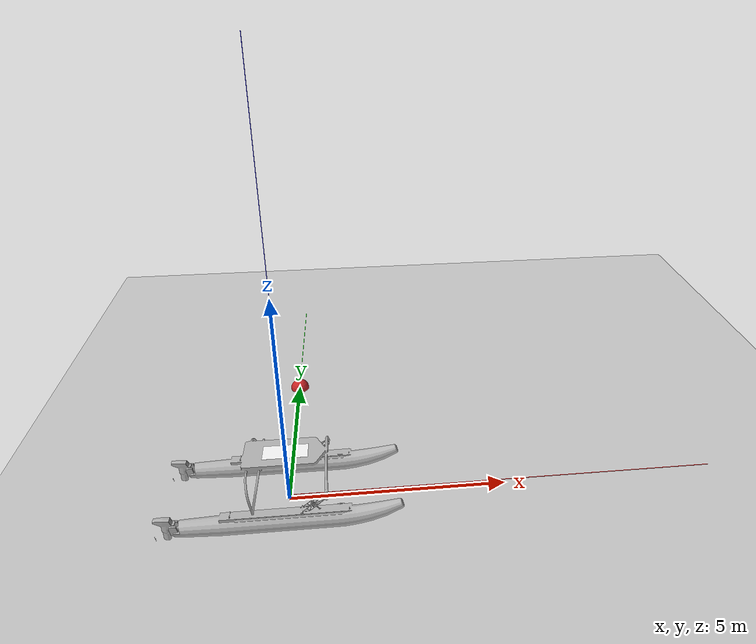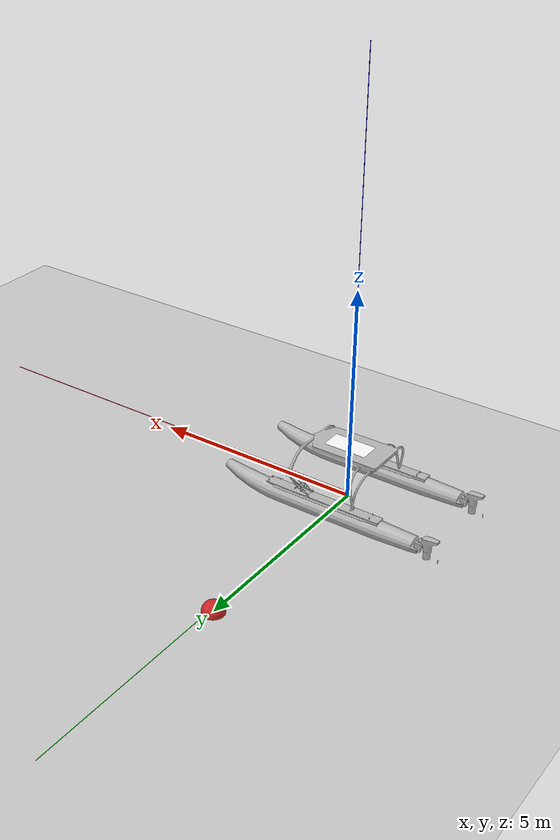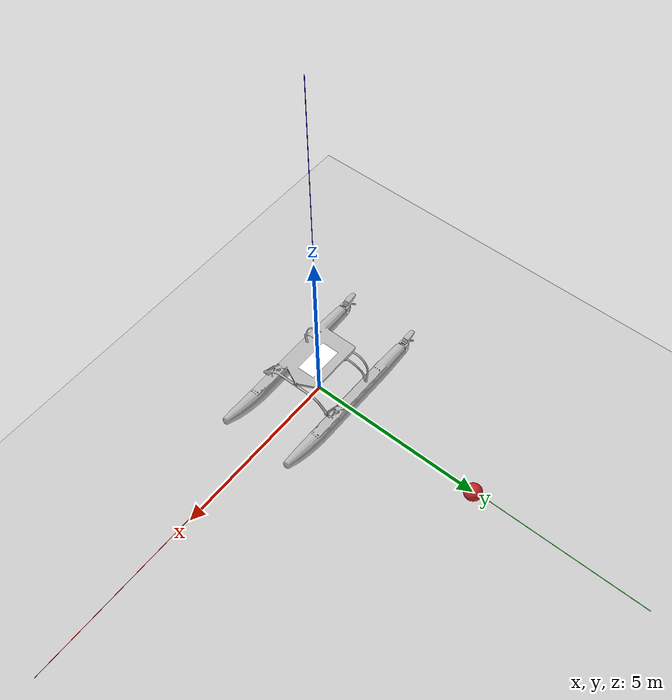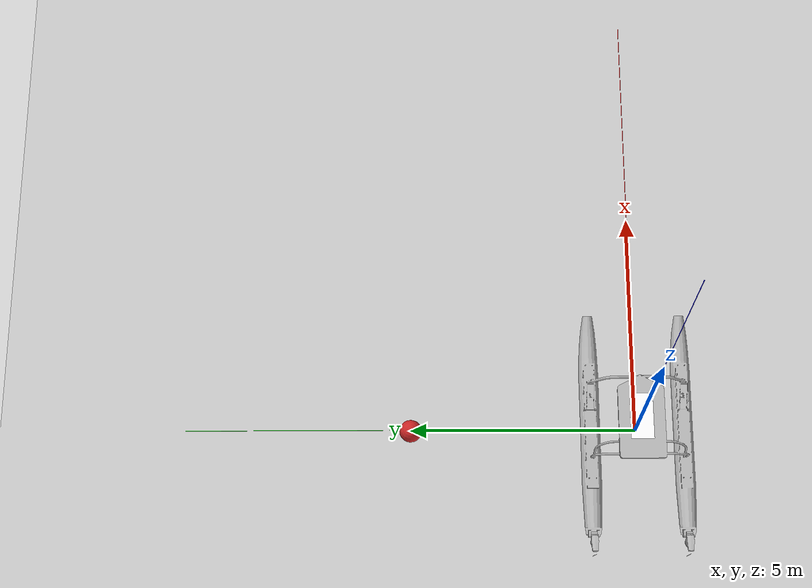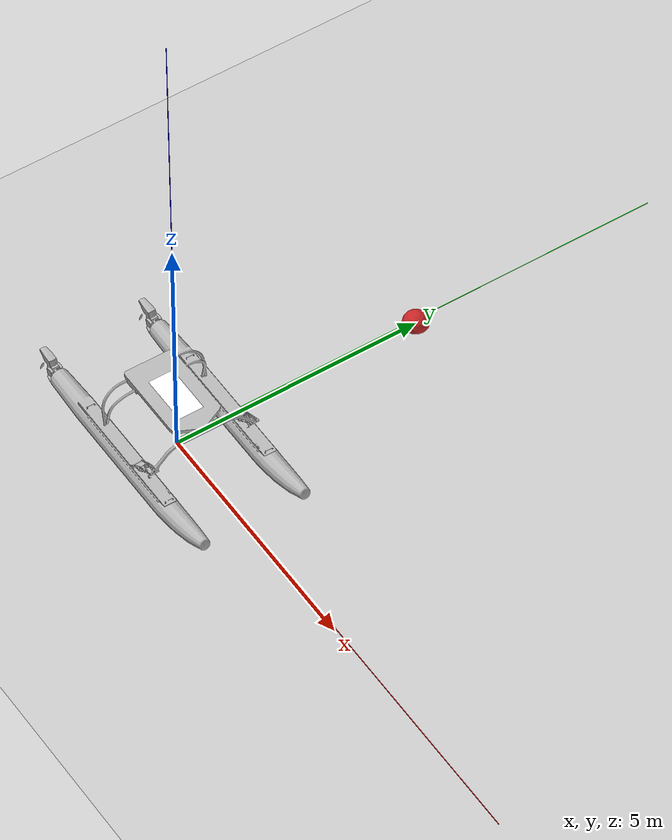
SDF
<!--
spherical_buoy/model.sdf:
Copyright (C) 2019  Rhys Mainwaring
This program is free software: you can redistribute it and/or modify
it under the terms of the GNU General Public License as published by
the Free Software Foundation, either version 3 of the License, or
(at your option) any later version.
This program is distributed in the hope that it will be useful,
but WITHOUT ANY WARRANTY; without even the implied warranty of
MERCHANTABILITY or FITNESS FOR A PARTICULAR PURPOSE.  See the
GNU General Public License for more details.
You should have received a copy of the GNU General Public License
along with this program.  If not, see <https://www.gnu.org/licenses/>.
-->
<sdf version="1.9">
 <world name="waves">
  <real_time_factor>0</real_time_factor>
  <gravity>0 0 -9.8</gravity>
  <magnetic_field>6e-06 2.3e-05 -4.2e-05</magnetic_field>
  <atmosphere type="adiabatic"/>
  <scene>
   <grid>false</grid>
   <ambient>0.4 0.4 0.4 1</ambient>
   <background>0.7 0.7 0.7 1</background>
   <shadows>true</shadows>
  </scene>
  <light type="directional" name="sun">
   <pose>0 0 10 0 0 0</pose>
   <diffuse>0.8 0.8 0.8 1</diffuse>
   <specular>0.6 0.6 0.6 1</specular>
   <direction>-0.5 0.1 -0.9</direction>
  </light>
  <wind><linear_velocity>7.07 7.07 0</linear_velocity></wind>
  <include><uri>model://waves</uri></include>
  <model name="axes">
   <static>1</static>
   <link name="link">
    <visual name="r">
     <cast_shadows>0</cast_shadows>
     <pose>5 0 0.1 0 0 0</pose>
     <geometry><box><size>10 0.01 0.01</size></box></geometry>
     <material>
      <ambient>1 0 0 1</ambient>
      <diffuse>1 0 0 1</diffuse>
      <emissive>1 0 0 1</emissive>
      <specular>0.5 0.5 0.5 1</specular>
     </material>
    </visual>
    <visual name="g">
     <cast_shadows>0</cast_shadows>
     <pose>0 5 0.1 0 0 0</pose>
     <geometry><box><size>0.01 10 0.01</size></box></geometry>
     <material>
      <ambient>0 1 0 1</ambient>
      <diffuse>0 1 0 1</diffuse>
      <emissive>0 1 0 1</emissive>
      <specular>0.5 0.5 0.5 1</specular>
     </material>
    </visual>
    <visual name="b">
     <cast_shadows>0</cast_shadows>
     <pose>0 0 5.1 0 0 0</pose>
     <geometry><box><size>0.01 0.01 10</size></box></geometry>
     <material>
      <ambient>0 0 1 1</ambient>
      <diffuse>0 0 1 1</diffuse>
      <emissive>0 0 1 1</emissive>
      <specular>0.5 0.5 0.5 1</specular>
     </material>
    </visual>
   </link>
  </model>
  <model name="ground_plane">
   <static>true</static>
   <link name="link">
    <collision name="collision">
     <geometry><plane><normal>0 0 1</normal><size>1 1</size></plane></geometry>
    </collision>
    <visual name="visual">
     <geometry><plane><normal>0 0 1</normal><size>500 500</size></plane></geometry>
     <material>
      <ambient>0.8 0.8 0.8 1</ambient>
      <diffuse>0.8 0.8 0.8 1</diffuse>
      <specular>0.8 0.8 0.8 1</specular>
     </material>
    </visual>
    <pose>0 0 -10 0 -0 0</pose>
    <inertial>
     <pose>0 0 -10 0 -0 0</pose>
     <mass>1</mass>
     <inertia><ixx>1</ixx><ixy>0</ixy><ixz>0</ixz><iyy>1</iyy><iyz>0</iyz><izz>1</izz></inertia>
    </inertial>
   </link>
  </model>
  <spherical_coordinates>
   <surface_model>EARTH_WGS84</surface_model>
   <world_frame_orientation>ENU</world_frame_orientation>
   <latitude_deg>47.397971057728974</latitude_deg>
   <longitude_deg>8.546163739800146</longitude_deg>
   <elevation>0</elevation>
  </spherical_coordinates>
  <include><pose>0 5 0 0 0 0</pose><uri>model://spherical_buoy</uri></include>
  <include><uri>model://wam-v</uri></include>
 </world>
</sdf>

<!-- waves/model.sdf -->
<sdf version="1.6">
  <model name="waves">
    <static>true</static>

    <plugin
        filename="gz-waves1-waves-model-system"
        name="gz::sim::systems::WavesModel">
      <static>0</static>
      <update_rate>30</update_rate>
      <wave>
        <!-- `fft` wave parameters -->
        <algorithm>fft</algorithm>
        <tile_size>256</tile_size>
        <cell_count>256</cell_count>
        <wind_speed>5.0</wind_speed>
        <wind_angle_deg>135</wind_angle_deg>
        <steepness>2</steepness>
      </wave>
    </plugin>

    <link name="base_link">

    </link>
  </model>
</sdf>

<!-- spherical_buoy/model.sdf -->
<sdf version="1.6">
  <model name="spherical_buoy">
    <static>false</static>

    <plugin name="hydrodynamics" filename="libHydrodynamicsPlugin.so">
      <!-- Wave Model -->
      <wave_model>ocean_waves</wave_model>

      <!-- Hydrodynamics -->
      <damping_on>true</damping_on>
      <viscous_drag_on>true</viscous_drag_on>
      <pressure_drag_on>true</pressure_drag_on>

      <!-- Markers -->
      <markers>
        <update_rate>30</update_rate>
        <water_patch>false</water_patch>
        <waterline>false</waterline>
        <underwater_surface>false</underwater_surface>
      </markers>
    </plugin>

    <link name="base_link">
      <visual name="base_visual">
        <geometry>
          <sphere>
            <radius>0.25</radius>
          </sphere>
        </geometry>
        <material>
          <script>
            <name>Gazebo/Red</name>
          </script>
        </material>
      </visual>

      <collision name="base_collision">
        <geometry>
          <sphere>
            <radius>0.25</radius>
          </sphere>
        </geometry>
      </collision>

      <!-- Mass and inertial assume volume is 0.1 densitity of water -->
      <inertial>
        <mass>6.545</mass>
        <inertia>
          <ixx>0.1636</ixx>
          <ixy>0.0</ixy>
          <ixz>0.0</ixz>
          <iyy>0.1636</iyy>
          <iyz>0.0</iyz>
          <izz>0.1636</izz>
        </inertia>
      </inertial>

    </link>

    <!-- Chain -->

  </model>
</sdf>

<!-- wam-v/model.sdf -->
<sdf version='1.7'>
  <model name='wamv'>
    <enable_wind>true</enable_wind>

    <link name="base_link">
      <visual name="visual">
        <geometry>
          <mesh>
            <uri>model://wam-v/meshes/WAM-V-Base.dae</uri>
          </mesh>
        </geometry>
      </visual>
      <collision name="collision">
        <geometry>
          <mesh>
            <uri>model://wam-v/meshes/wam-v-base_collision_406.stl</uri>
          </mesh>
        </geometry>
      </collision>
      <inertial>
        <pose>0 0 0 0 0 0</pose>
        <mass>180</mass>
        <inertia>
          <ixx>120</ixx>
          <ixy>0</ixy>
          <iyy>393</iyy>
          <iyz>0</iyz>
          <izz>446</izz>
        </inertia>
      </inertial>
    </link>

    <link name="left_engine_link">
      <pose>-2.373776 1.027135 0.318237 0 0 0</pose>
      <visual name="visual">
        <geometry>
          <mesh>
            <uri>model://wam-v/meshes/engine.dae</uri>
          </mesh>
        </geometry>
      </visual>
      <collision name="engine_vertical_axis_collision">
        <pose>-0.16 0 -0.215 0 0 0</pose>
        <geometry>
          <box>
            <size>0.2 0.1 0.83</size>
          </box>
        </geometry>
      </collision>
      <collision name="engine_rear_end_collision">
        <pose>-0.34 0 0.12 0 0 0</pose>
        <geometry>
          <box>
            <size>0.12 0.15 0.12</size>
          </box>
        </geometry>
      </collision>
      <inertial>
        <mass>15</mass>
        <inertia>
          <ixx>0.88924</ixx>
          <ixy>0</ixy>
          <iyy>0.911125</iyy>
          <iyz>0</iyz>
          <izz>0.078125</izz>
        </inertia>
      </inertial>
    </link>
    <joint name="left_engine_joint" type="revolute">
      <parent>base_link</parent>
      <child>left_engine_link</child>
      <axis>
        <xyz>0 0 1</xyz>
        <limit>
          <lower>-1.570796</lower>
          <upper>1.570796</upper>
        </limit>
        <dynamics>
          <damping>0.05</damping>
        </dynamics>
      </axis>
    </joint>
    <link name="right_engine_link">
      <pose>-2.373776 -1.027135 0.318237 0 0 0</pose>
      <visual name="visual">
        <geometry>
          <mesh>
            <uri>model://wam-v/meshes/engine.dae</uri>
          </mesh>
        </geometry>
      </visual>
      <collision name="engine_vertical_axis_collision">
        <pose>-0.16 0 -0.215 0 0 0</pose>
        <geometry>
          <box>
            <size>0.2 0.1 0.83</size>
          </box>
        </geometry>
      </collision>
      <collision name="engine_rear_end_collision">
        <pose>-0.34 0 0.12 0 0 0</pose>
        <geometry>
          <box>
            <size>0.12 0.15 0.12</size>
          </box>
        </geometry>
      </collision>
      <inertial>
        <mass>15</mass>
        <inertia>
          <ixx>0.88924</ixx>
          <ixy>0</ixy>
          <iyy>0.911125</iyy>
          <iyz>0</iyz>
          <izz>0.078125</izz>
        </inertia>
      </inertial>
    </link>
    <joint name="right_engine_joint" type="revolute">
      <parent>base_link</parent>
      <child>right_engine_link</child>
      <axis>
        <xyz>0 0 1</xyz>
        <limit>
          <lower>-1.570796</lower>
          <upper>1.570796</upper>
        </limit>
        <dynamics>
          <damping>0.05</damping>
        </dynamics>
      </axis>
    </joint>

    <link name="left_propeller_link">
      <pose relative_to="left_propeller_joint">0 0 0 0 0 0</pose>
      <visual name="visual">
        <geometry>
          <mesh>
            <uri>model://wam-v/meshes/propeller.dae</uri>
          </mesh>
        </geometry>
      </visual>
      <collision name="collision">
        <pose>-0.11 0 0 0 1.570796 0</pose>
        <geometry>
          <cylinder>
            <length>0.08</length>
            <radius>0.24</radius>
          </cylinder>
        </geometry>
      </collision>
      <inertial>
        <mass>0.5</mass>
        <inertia>
          <ixx>0.008545</ixx>
          <ixy>0</ixy>
          <iyy>0.008545</iyy>
          <iyz>0</iyz>
          <izz>0.0144</izz>
        </inertia>
      </inertial>
    </link>
    <joint name="left_propeller_joint" type="revolute">
      <pose relative_to="left_engine_link">-0.278156 0 -0.509371 0 0 0</pose>
      <parent>left_engine_link</parent>
      <child>left_propeller_link</child>
      <axis>
        <xyz>1 0 0</xyz>
        <dynamics>
          <damping>0.01</damping>
        </dynamics>
        <limit>
          <lower>-1e+16</lower>
          <upper>1e+16</upper>
        </limit>
      </axis>
    </joint>

    <link name="right_propeller_link">
      <pose relative_to="right_propeller_joint">0 0 0 0 0 0</pose>
      <visual name="visual">
        <geometry>
          <mesh>
            <uri>model://wam-v/meshes/propeller.dae</uri>
          </mesh>
        </geometry>
      </visual>
      <collision name="collision">
        <pose>-0.11 0 0 0 1.570796 0</pose>
        <geometry>
          <cylinder>
            <length>0.08</length>
            <radius>0.24</radius>
          </cylinder>
        </geometry>
      </collision>
      <inertial>
        <mass>0.5</mass>
        <inertia>
          <ixx>0.008545</ixx>
          <ixy>0</ixy>
          <iyy>0.008545</iyy>
          <iyz>0</iyz>
          <izz>0.0144</izz>
        </inertia>
      </inertial>
    </link>
    <joint name="right_propeller_joint" type="revolute">
      <pose relative_to="right_engine_link">-0.278156 0 -0.509371 0 0 0</pose>
      <parent>right_engine_link</parent>
      <child>right_propeller_link</child>
      <axis>
        <xyz>1 0 0</xyz>
        <dynamics>
          <damping>0.01</damping>
        </dynamics>
        <limit>
          <lower>-1e+16</lower>
          <upper>1e+16</upper>
        </limit>
      </axis>
    </joint>

    <!-- Sensors -->
    <link name="imu_link">
      <inertial>
        <pose>0 0 0 0 0 0</pose>
        <mass>0.15</mass>
        <inertia>
          <ixx>0.00001</ixx>
          <ixy>0</ixy>
          <ixz>0</ixz>
          <iyy>0.00002</iyy>
          <iyz>0</iyz>
          <izz>0.00002</izz>
        </inertia>
      </inertial>
      <sensor name="imu_sensor" type="imu">
        <pose>0 0 0 3.141593 0 0</pose>
        <always_on>1</always_on>
        <update_rate>1000.0</update_rate>
      </sensor>
    </link>
    <joint name="imu_joint" type="revolute">
      <child>imu_link</child>
      <parent>base_link</parent>
      <axis>
        <xyz>0 0 1</xyz>
        <limit>
          <lower>0</lower>
          <upper>0</upper>
          <effort>0</effort>
          <velocity>0</velocity>
        </limit>
        <dynamics>
          <damping>1.0</damping>
        </dynamics>
      </axis>
    </joint>
    <link name='aruco_link'>
      <pose> 0 0 1.3 0 0 0 </pose>
      <visual name='base_visual'>
        <geometry>
          <plane>
            <normal>0 0 1</normal>
            <size>1.0 0.5</size>
          </plane>
        </geometry>
        <material>
          <diffuse>1 1 1 1</diffuse>
          <specular>0.4 0.4 0.4 1</specular>
          <pbr>
            <metal>
              <albedo_map>model://arucotag/arucotag4.png</albedo_map>
            </metal>
          </pbr>
        </material>
      </visual>
    </link>
    <link name="gps_link">
      <pose>0 0 0.5 0 0 0</pose>
      <sensor name="wamv_gps" type="navsat">
        <topic>wamv/gps/navsat</topic>
        <always_on>1</always_on>
        <update_rate>10</update_rate>
      </sensor>
    </link>
    <joint name="aruco_wamv_joint" type="fixed">
      <parent>base_link</parent>
      <child>aruco_link</child>
    </joint>
    <joint name="gps_wamv_joint" type="fixed">
      <parent>base_link</parent>
      <child>gps_link</child>
    </joint>
    <!-- Joint state and force plugins -->
    <plugin filename="gz-sim-joint-state-publisher-system"
      name="gz::sim::systems::JointStatePublisher">
    </plugin>
    <plugin filename="gz-sim-apply-joint-force-system"
      name="gz::sim::systems::ApplyJointForce">
      <joint_name>left_engine_joint</joint_name>
    </plugin>
    <plugin filename="gz-sim-apply-joint-force-system"
      name="gz::sim::systems::ApplyJointForce">
      <joint_name>right_engine_joint</joint_name>
    </plugin>
    <plugin filename="gz-sim-odometry-publisher-system" name="gz::sim::systems::OdometryPublisher">
      <odom_frame>world</odom_frame>
      <robot_base_frame>base_link</robot_base_frame>
      <dimensions>3</dimensions>
      <odom_publish_frequency>50</odom_publish_frequency>
      <topic>/wamv/odometry</topic>
    </plugin>
    <!-- Thruster plugins -->
    <plugin
        filename="gz-sim-thruster-system"
        name="gz::sim::systems::Thruster">
      <namespace>wamv</namespace>
      <joint_name>left_propeller_joint</joint_name>
      <use_angvel_cmd>0</use_angvel_cmd>
      <fluid_density>1000</fluid_density>
      <propeller_diameter>0.48</propeller_diameter>
      <thrust_coefficient>0.01</thrust_coefficient>
      <velocity_control>1</velocity_control>
      <max_thrust_cmd>2000.0</max_thrust_cmd>
      <min_thrust_cmd>-2000.0</min_thrust_cmd>
    </plugin>
    <plugin
        filename="gz-sim-thruster-system"
        name="gz::sim::systems::Thruster">
      <namespace>wamv</namespace>
      <joint_name>right_propeller_joint</joint_name>
      <use_angvel_cmd>0</use_angvel_cmd>
      <fluid_density>1000</fluid_density>
      <propeller_diameter>0.48</propeller_diameter>
      <thrust_coefficient>0.01</thrust_coefficient>
      <velocity_control>1</velocity_control>
      <max_thrust_cmd>2000.0</max_thrust_cmd>
      <min_thrust_cmd>-2000.0</min_thrust_cmd>
    </plugin>

    <!-- Hydrodynamics plugin -->
    <plugin
        filename="gz-waves1-hydrodynamics-system"
        name="gz::sim::systems::Hydrodynamics">

        <enable>wamv::base_link</enable>

        <hydrodynamics>
          <damping_on>1</damping_on>
          <viscous_drag_on>1</viscous_drag_on>
          <pressure_drag_on>1</pressure_drag_on>

          <!-- Linear and Angular Damping -->
          <cDampL1>1.0E-6</cDampL1>
          <cDampL2>1.0E-6</cDampL2>
          <cDampR1>1.0E-6</cDampR1>
          <cDampR2>1.0E-6</cDampR2>

          <!-- 'Pressure' Drag -->
          <cPDrag1>1.0E+2</cPDrag1>
          <cPDrag2>1.0E+2</cPDrag2>
          <fPDrag>0.4</fPDrag>
          <cSDrag1>1.0E+2</cSDrag1>
          <cSDrag2>1.0E+2</cSDrag2>
          <fSDrag>0.4</fSDrag>
          <vRDrag>1.0</vRDrag>
        </hydrodynamics>
    </plugin>

    <!-- ArduPilot plugin -->
    <plugin name="ArduPilotPlugin" filename="ArduPilotPlugin">
      <fdm_addr>127.0.0.1</fdm_addr>
      <fdm_port_in>9002</fdm_port_in>
      <connectionTimeoutMaxCount>5</connectionTimeoutMaxCount>
      <lock_step>1</lock_step>
      <modelXYZToAirplaneXForwardZDown>0 0 0 3.141593 0 0</modelXYZToAirplaneXForwardZDown>
      <gazeboXYZToNED>0 0 0 3.141593 0 1.57079632</gazeboXYZToNED>
      <imuName>imu_sensor</imuName>

      <!--
        SERVO1_FUNCTION 26 (GroundSteering)
      -->
      <control channel="0">
        <jointName>left_engine_joint</jointName>
        <useForce>1</useForce>
        <multiplier>3.1415926</multiplier>
        <offset>-0.5</offset>
        <servo_min>1000</servo_min>
        <servo_max>2000</servo_max>
        <type>POSITION</type>
        <p_gain>500.0</p_gain>
        <i_gain>0</i_gain>
        <d_gain>10</d_gain>
        <i_max>-1</i_max>
        <i_min>0</i_min>
        <cmd_max>5000.0</cmd_max>
        <cmd_min>-5000.0</cmd_min>
      </control>
      <control channel="0">
        <jointName>right_engine_joint</jointName>
        <useForce>1</useForce>
        <multiplier>3.1415926</multiplier>
        <offset>-0.5</offset>
        <servo_min>1000</servo_min>
        <servo_max>2000</servo_max>
        <type>POSITION</type>
        <p_gain>500.0</p_gain>
        <i_gain>0</i_gain>
        <d_gain>10</d_gain>
        <i_max>-1</i_max>
        <i_min>0</i_min>
        <cmd_max>5000.0</cmd_max>
        <cmd_min>-5000.0</cmd_min>
      </control>

        <!--
          SERVO3_FUNCTION 70 (Throttle)

          max thrust: +/- 1500 N (larger than VRX settings of +250 N / -100 N)

        -->
      <control channel="2">
        <jointName>left_propeller_joint</jointName>
        <useForce>1</useForce>
        <multiplier>3000</multiplier>
        <offset>-0.5</offset>
        <servo_min>1000</servo_min>
        <servo_max>2000</servo_max>
        <type>COMMAND</type>
        <cmd_topic>/model/wamv/joint/left_propeller_joint/cmd_thrust</cmd_topic>
      </control>
      <control channel="2">
        <jointName>right_propeller_joint</jointName>
        <useForce>1</useForce>
        <multiplier>3000</multiplier>
        <offset>-0.5</offset>
        <servo_min>1000</servo_min>
        <servo_max>2000</servo_max>
        <type>COMMAND</type>
        <cmd_topic>/model/wamv/joint/right_propeller_joint/cmd_thrust</cmd_topic>
      </control>
    </plugin>

  </model>
</sdf>
